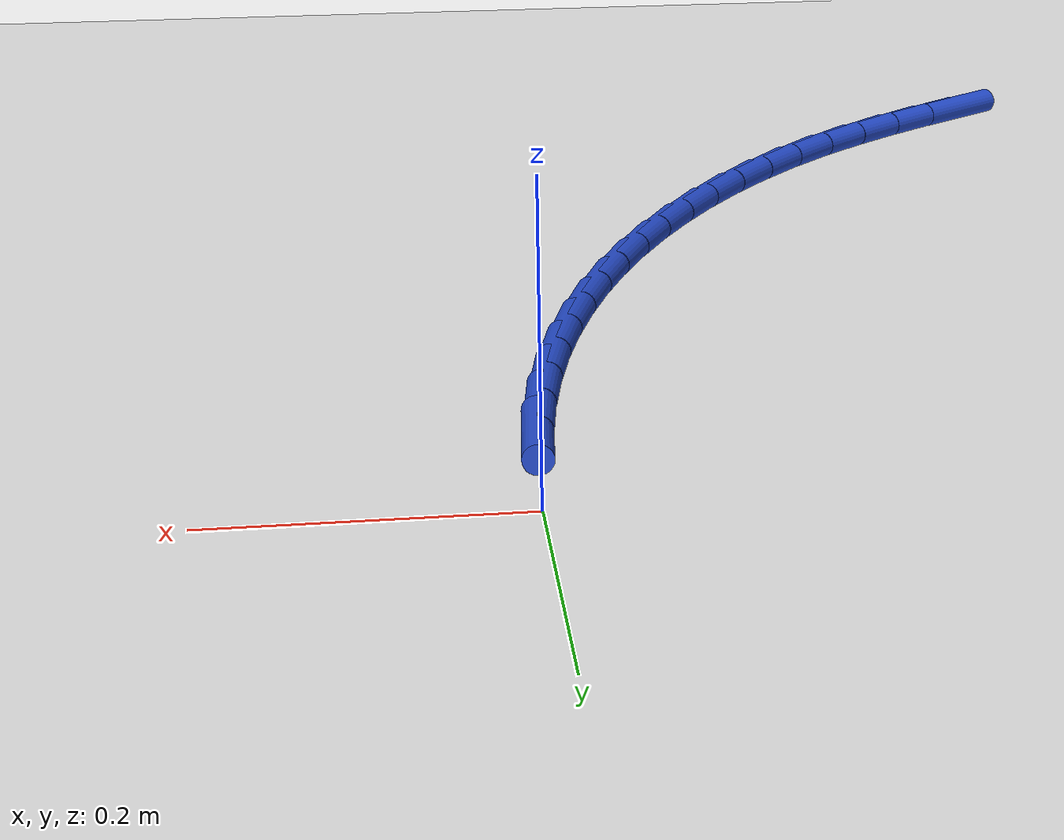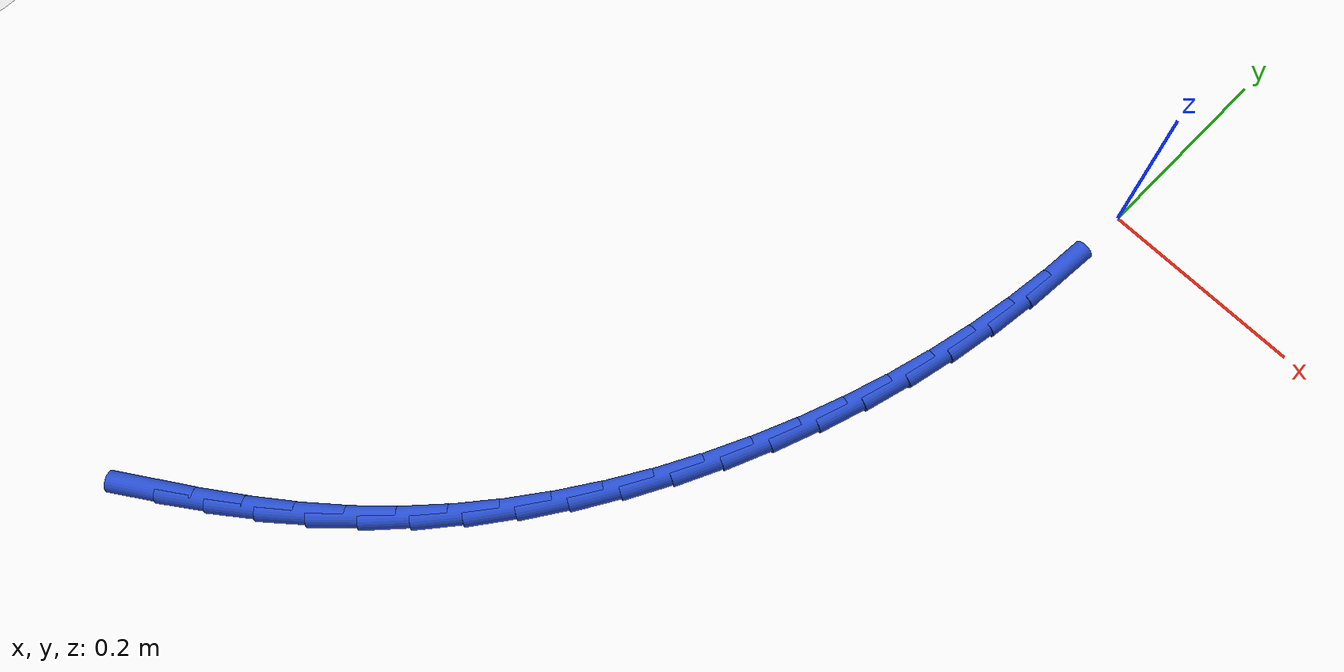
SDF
<sdf version="1.6">
 <world name="default">
  <model name="ground_plane">
   <static>1</static>
   <link name="link">
    <collision name="collision">
     <geometry><plane><normal>0 0 1</normal><size>100 100</size></plane></geometry>
     <surface><friction><ode><mu>100</mu><mu2>50</mu2></ode></friction></surface>
    </collision>
    <visual name="visual">
     <cast_shadows>0</cast_shadows>
     <geometry><plane><normal>0 0 1</normal><size>100 100</size></plane></geometry>
     <material>
      <script><uri>file://media/materials/scripts/gazebo.material</uri><name>Gazebo/WhiteGlow</name></script>
     </material>
    </visual>
   </link>
  </model>
  <model name="line">
   <link name="link_139">
    <pose>-0.4438152874891427 -0.8219852542376003 0.01 0 1.57 0.5894168360414056</pose>
    <collision name="collision">
     <geometry><cylinder><radius>0.01</radius><length>0.08</length></cylinder></geometry>
    </collision>
    <visual name="visual">
     <material>
      <script><name>Gazebo/Blue</name><uri>file://media/materials/scripts/gazebo.material</uri></script>
     </material>
     <geometry><cylinder><radius>0.01</radius><length>0.08</length></cylinder></geometry>
    </visual>
   </link>
   <link name="link_140">
    <pose>-0.4055059904645933 -0.7963673915070794 0.01 0 1.57 0.6217123135581637</pose>
    <collision name="collision">
     <geometry><cylinder><radius>0.01</radius><length>0.08</length></cylinder></geometry>
    </collision>
    <visual name="visual">
     <material>
      <script><name>Gazebo/Blue</name><uri>file://media/materials/scripts/gazebo.material</uri></script>
     </material>
     <geometry><cylinder><radius>0.01</radius><length>0.08</length></cylinder></geometry>
    </visual>
   </link>
   <link name="link_141">
    <pose>-0.3681807715801416 -0.7696239768824594 0.01 0 1.57 0.6635704428972542</pose>
    <collision name="collision">
     <geometry><cylinder><radius>0.01</radius><length>0.08</length></cylinder></geometry>
    </collision>
    <visual name="visual">
     <material>
      <script><name>Gazebo/Blue</name><uri>file://media/materials/scripts/gazebo.material</uri></script>
     </material>
     <geometry><cylinder><radius>0.01</radius><length>0.08</length></cylinder></geometry>
    </visual>
   </link>
   <link name="link_142">
    <pose>-0.33209442515021365 -0.7414101594446206 0.01 0 1.57 0.7148948968306144</pose>
    <collision name="collision">
     <geometry><cylinder><radius>0.01</radius><length>0.08</length></cylinder></geometry>
    </collision>
    <visual name="visual">
     <material>
      <script><name>Gazebo/Blue</name><uri>file://media/materials/scripts/gazebo.material</uri></script>
     </material>
     <geometry><cylinder><radius>0.01</radius><length>0.08</length></cylinder></geometry>
    </visual>
   </link>
   <link name="link_143">
    <pose>-0.2975017454892333 -0.7113810882744415 0.01 0 1.57 0.7740704382260165</pose>
    <collision name="collision">
     <geometry><cylinder><radius>0.01</radius><length>0.08</length></cylinder></geometry>
    </collision>
    <visual name="visual">
     <material>
      <script><name>Gazebo/Blue</name><uri>file://media/materials/scripts/gazebo.material</uri></script>
     </material>
     <geometry><cylinder><radius>0.01</radius><length>0.08</length></cylinder></geometry>
    </visual>
   </link>
   <link name="link_144">
    <pose>-0.26463286229204736 -0.6792485547573003 0.01 0 1.57 0.8331280483922394</pose>
    <collision name="collision">
     <geometry><cylinder><radius>0.01</radius><length>0.08</length></cylinder></geometry>
    </collision>
    <visual name="visual">
     <material>
      <script><name>Gazebo/Blue</name><uri>file://media/materials/scripts/gazebo.material</uri></script>
     </material>
     <geometry><cylinder><radius>0.01</radius><length>0.08</length></cylinder></geometry>
    </visual>
   </link>
   <link name="link_145">
    <pose>-0.23356843575250283 -0.6450676070217913 0.01 0 1.57 0.8893460614570877</pose>
    <collision name="collision">
     <geometry><cylinder><radius>0.01</radius><length>0.08</length></cylinder></geometry>
    </collision>
    <visual name="visual">
     <material>
      <script><name>Gazebo/Blue</name><uri>file://media/materials/scripts/gazebo.material</uri></script>
     </material>
     <geometry><cylinder><radius>0.01</radius><length>0.08</length></cylinder></geometry>
    </visual>
   </link>
   <link name="link_146">
    <pose>-0.204333117013331 -0.6090219179951987 0.01 0 1.57 0.9429684310340805</pose>
    <collision name="collision">
     <geometry><cylinder><radius>0.01</radius><length>0.08</length></cylinder></geometry>
    </collision>
    <visual name="visual">
     <material>
      <script><name>Gazebo/Blue</name><uri>file://media/materials/scripts/gazebo.material</uri></script>
     </material>
     <geometry><cylinder><radius>0.01</radius><length>0.08</length></cylinder></geometry>
    </visual>
   </link>
   <link name="link_147">
    <pose>-0.1769514585580527 -0.5712953871757128 0.01 0 1.57 0.9942743667953864</pose>
    <collision name="collision">
     <geometry><cylinder><radius>0.01</radius><length>0.08</length></cylinder></geometry>
    </collision>
    <visual name="visual">
     <material>
      <script><name>Gazebo/Blue</name><uri>file://media/materials/scripts/gazebo.material</uri></script>
     </material>
     <geometry><cylinder><radius>0.01</radius><length>0.08</length></cylinder></geometry>
    </visual>
   </link>
   <link name="link_148">
    <pose>-0.1514480128701869 -0.5320719140615207 0.01 0 1.57 1.0435619795307214</pose>
    <collision name="collision">
     <geometry><cylinder><radius>0.01</radius><length>0.08</length></cylinder></geometry>
    </collision>
    <visual name="visual">
     <material>
      <script><name>Gazebo/Blue</name><uri>file://media/materials/scripts/gazebo.material</uri></script>
     </material>
     <geometry><cylinder><radius>0.01</radius><length>0.08</length></cylinder></geometry>
    </visual>
   </link>
   <link name="link_149">
    <pose>-0.12784733243325316 -0.4915353981508108 0.01 0 1.57 1.091140644822912</pose>
    <collision name="collision">
     <geometry><cylinder><radius>0.01</radius><length>0.08</length></cylinder></geometry>
    </collision>
    <visual name="visual">
     <material>
      <script><name>Gazebo/Blue</name><uri>file://media/materials/scripts/gazebo.material</uri></script>
     </material>
     <geometry><cylinder><radius>0.01</radius><length>0.08</length></cylinder></geometry>
    </visual>
   </link>
   <link name="link_150">
    <pose>-0.10617396973077127 -0.44986973894177157 0.01 0 1.57 1.1373265028836337</pose>
    <collision name="collision">
     <geometry><cylinder><radius>0.01</radius><length>0.08</length></cylinder></geometry>
    </collision>
    <visual name="visual">
     <material>
      <script><name>Gazebo/Blue</name><uri>file://media/materials/scripts/gazebo.material</uri></script>
     </material>
     <geometry><cylinder><radius>0.01</radius><length>0.08</length></cylinder></geometry>
    </visual>
   </link>
   <link name="link_151">
    <pose>-0.08645247724626039 -0.4072588359325904 0.01 0 1.57 1.1824508170493455</pose>
    <collision name="collision">
     <geometry><cylinder><radius>0.01</radius><length>0.08</length></cylinder></geometry>
    </collision>
    <visual name="visual">
     <material>
      <script><name>Gazebo/Blue</name><uri>file://media/materials/scripts/gazebo.material</uri></script>
     </material>
     <geometry><cylinder><radius>0.01</radius><length>0.08</length></cylinder></geometry>
    </visual>
   </link>
   <link name="link_152">
    <pose>-0.06870729428409529 -0.3638850380186749 0.01 0 1.57 1.227124993653231</pose>
    <collision name="collision">
     <geometry><cylinder><radius>0.01</radius><length>0.08</length></cylinder></geometry>
    </collision>
    <visual name="visual">
     <material>
      <script><name>Gazebo/Blue</name><uri>file://media/materials/scripts/gazebo.material</uri></script>
     </material>
     <geometry><cylinder><radius>0.01</radius><length>0.08</length></cylinder></geometry>
    </visual>
   </link>
   <link name="link_153">
    <pose>-0.05295918056618654 -0.31988028223931053 0.01 0 1.57 1.2718328546621105</pose>
    <collision name="collision">
     <geometry><cylinder><radius>0.01</radius><length>0.08</length></cylinder></geometry>
    </collision>
    <visual name="visual">
     <material>
      <script><name>Gazebo/Blue</name><uri>file://media/materials/scripts/gazebo.material</uri></script>
     </material>
     <geometry><cylinder><radius>0.01</radius><length>0.08</length></cylinder></geometry>
    </visual>
   </link>
   <link name="link_154">
    <pose>-0.039224495266288184 -0.27531621623878766 0.01 0 1.57 1.3166198506818227</pose>
    <collision name="collision">
     <geometry><cylinder><radius>0.01</radius><length>0.08</length></cylinder></geometry>
    </collision>
    <visual name="visual">
     <material>
      <script><name>Gazebo/Blue</name><uri>file://media/materials/scripts/gazebo.material</uri></script>
     </material>
     <geometry><cylinder><radius>0.01</radius><length>0.08</length></cylinder></geometry>
    </visual>
   </link>
   <link name="link_155">
    <pose>-0.027519338737166 -0.23026094170297537 0.01 0 1.57 1.3615083152504224</pose>
    <collision name="collision">
     <geometry><cylinder><radius>0.01</radius><length>0.08</length></cylinder></geometry>
    </collision>
    <visual name="visual">
     <material>
      <script><name>Gazebo/Blue</name><uri>file://media/materials/scripts/gazebo.material</uri></script>
     </material>
     <geometry><cylinder><radius>0.01</radius><length>0.08</length></cylinder></geometry>
    </visual>
   </link>
   <link name="link_156">
    <pose>-0.017859811331585592 -0.18478256031774218 0.01 0 1.57 1.4065202628038163</pose>
    <collision name="collision">
     <geometry><cylinder><radius>0.01</radius><length>0.08</length></cylinder></geometry>
    </collision>
    <visual name="visual">
     <material>
      <script><name>Gazebo/Blue</name><uri>file://media/materials/scripts/gazebo.material</uri></script>
     </material>
     <geometry><cylinder><radius>0.01</radius><length>0.08</length></cylinder></geometry>
    </visual>
   </link>
   <link name="link_157">
    <pose>-0.010262013402313136 -0.1389491737689593 0.01 0 1.57 1.4516766327529835</pose>
    <collision name="collision">
     <geometry><cylinder><radius>0.01</radius><length>0.08</length></cylinder></geometry>
    </collision>
    <visual name="visual">
     <material>
      <script><name>Gazebo/Blue</name><uri>file://media/materials/scripts/gazebo.material</uri></script>
     </material>
     <geometry><cylinder><radius>0.01</radius><length>0.08</length></cylinder></geometry>
    </visual>
   </link>
   <link name="link_158">
    <pose>-0.004742045302114192 -0.09282888374249502 0.01 0 1.57 1.4969965250573003</pose>
    <collision name="collision">
     <geometry><cylinder><radius>0.01</radius><length>0.08</length></cylinder></geometry>
    </collision>
    <visual name="visual">
     <material>
      <script><name>Gazebo/Blue</name><uri>file://media/materials/scripts/gazebo.material</uri></script>
     </material>
     <geometry><cylinder><radius>0.01</radius><length>0.08</length></cylinder></geometry>
    </visual>
   </link>
  </model>
 </world>
</sdf>
